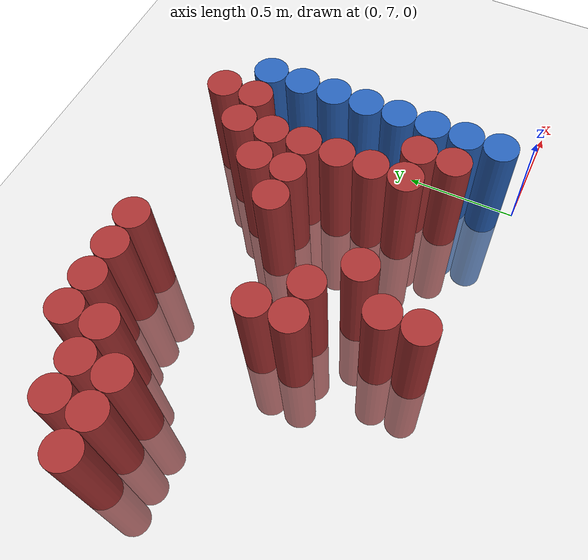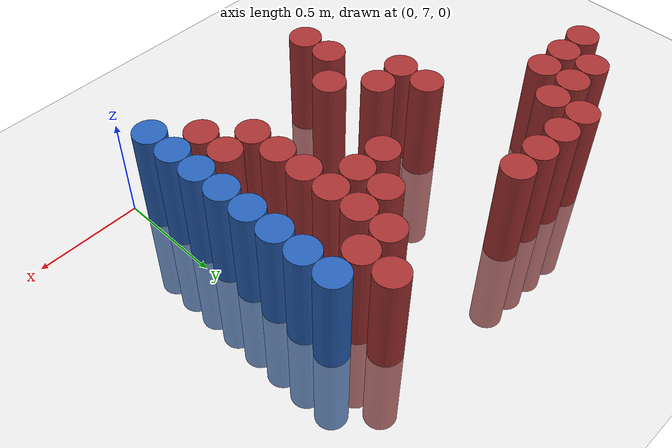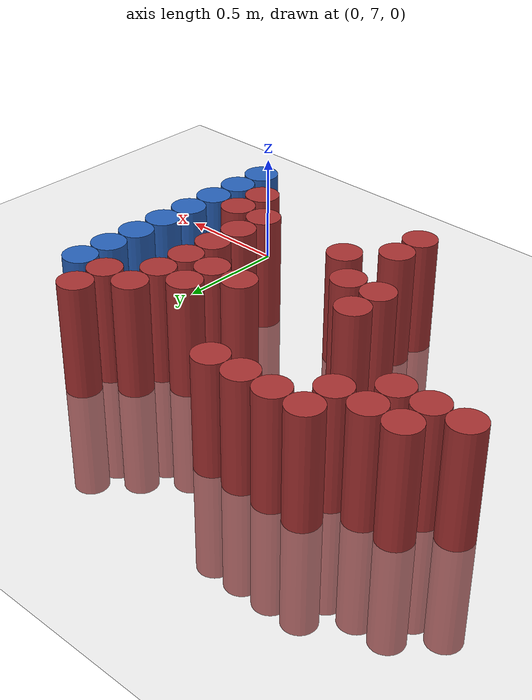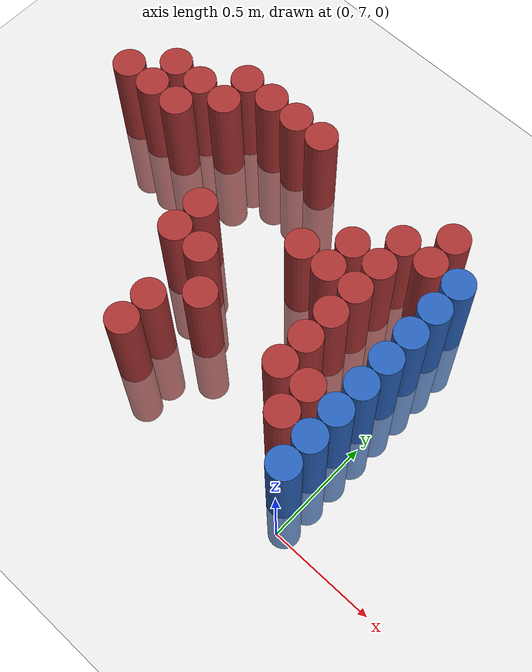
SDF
<sdf version="1.6">
 <world name="default">
  <model name="ground_plane">
   <static>1</static>
   <link name="link">
    <collision name="collision">
     <geometry><plane><normal>0 0 1</normal><size>100 100</size></plane></geometry>
     <surface><friction><ode><mu>100</mu><mu2>50</mu2></ode></friction></surface>
    </collision>
    <visual name="visual">
     <cast_shadows>0</cast_shadows>
     <geometry><plane><normal>0 0 1</normal><size>100 100</size></plane></geometry>
     <material>
      <script><uri>file://media/materials/scripts/gazebo.material</uri><name>Gazebo/Grey</name></script>
     </material>
    </visual>
   </link>
  </model>
  <model name="unit_cylinder_195">
   <static>1</static>
   <pose>-1.875000 8.025000 0.000000 0.000000 0.000000 0.000000</pose>
   <link name="link">
    <inertial>
     <mass>1</mass>
     <inertia><ixx>0.145833</ixx><ixy>0</ixy><ixz>0</ixz><iyy>0.145833</iyy><iyz>0</iyz><izz>0.125</izz></inertia>
    </inertial>
    <collision name="collision">
     <geometry><cylinder><radius>0.075000</radius><length>1</length></cylinder></geometry>
    </collision>
    <visual name="visual">
     <geometry><cylinder><radius>0.075000</radius><length>1</length></cylinder></geometry>
     <material>
      <ambient>0.648000 0.192000 0.192000 1</ambient>
      <diffuse>0.648000 0.192000 0.192000 1</diffuse>
     </material>
     <material>
      <script><name>Gazebo/Grey</name><uri>file://media/materials/scripts/gazebo.material</uri></script>
     </material>
    </visual>
    <sensor name="sensor_contact" type="contact"><contact><collision>collision</collision></contact></sensor>
   </link>
   <plugin filename="gz-sim-touchplugin-system" name="gz::sim::systems::TouchPlugin">
    <target>robot</target>
    <namespace>robot</namespace>
    <time>0.001</time>
    <enabled>true</enabled>
   </plugin>
  </model>
  <model name="unit_cylinder_202">
   <static>1</static>
   <pose>-1.725000 8.025000 0.000000 0.000000 0.000000 0.000000</pose>
   <link name="link">
    <inertial>
     <mass>1</mass>
     <inertia><ixx>0.145833</ixx><ixy>0</ixy><ixz>0</ixz><iyy>0.145833</iyy><iyz>0</iyz><izz>0.125</izz></inertia>
    </inertial>
    <collision name="collision">
     <geometry><cylinder><radius>0.075000</radius><length>1</length></cylinder></geometry>
    </collision>
    <visual name="visual">
     <geometry><cylinder><radius>0.075000</radius><length>1</length></cylinder></geometry>
     <material>
      <ambient>0.648000 0.192000 0.192000 1</ambient>
      <diffuse>0.648000 0.192000 0.192000 1</diffuse>
     </material>
     <material>
      <script><name>Gazebo/Grey</name><uri>file://media/materials/scripts/gazebo.material</uri></script>
     </material>
    </visual>
    <sensor name="sensor_contact" type="contact"><contact><collision>collision</collision></contact></sensor>
   </link>
   <plugin filename="gz-sim-touchplugin-system" name="gz::sim::systems::TouchPlugin">
    <target>robot</target>
    <namespace>robot</namespace>
    <time>0.001</time>
    <enabled>true</enabled>
   </plugin>
  </model>
  <model name="unit_cylinder_203">
   <static>1</static>
   <pose>-1.725000 8.175000 0.000000 0.000000 0.000000 0.000000</pose>
   <link name="link">
    <inertial>
     <mass>1</mass>
     <inertia><ixx>0.145833</ixx><ixy>0</ixy><ixz>0</ixz><iyy>0.145833</iyy><iyz>0</iyz><izz>0.125</izz></inertia>
    </inertial>
    <collision name="collision">
     <geometry><cylinder><radius>0.075000</radius><length>1</length></cylinder></geometry>
    </collision>
    <visual name="visual">
     <geometry><cylinder><radius>0.075000</radius><length>1</length></cylinder></geometry>
     <material>
      <ambient>0.648000 0.192000 0.192000 1</ambient>
      <diffuse>0.648000 0.192000 0.192000 1</diffuse>
     </material>
     <material>
      <script><name>Gazebo/Grey</name><uri>file://media/materials/scripts/gazebo.material</uri></script>
     </material>
    </visual>
    <sensor name="sensor_contact" type="contact"><contact><collision>collision</collision></contact></sensor>
   </link>
   <plugin filename="gz-sim-touchplugin-system" name="gz::sim::systems::TouchPlugin">
    <target>robot</target>
    <namespace>robot</namespace>
    <time>0.001</time>
    <enabled>true</enabled>
   </plugin>
  </model>
  <model name="unit_cylinder_209">
   <static>1</static>
   <pose>-1.575000 8.025000 0.000000 0.000000 0.000000 0.000000</pose>
   <link name="link">
    <inertial>
     <mass>1</mass>
     <inertia><ixx>0.145833</ixx><ixy>0</ixy><ixz>0</ixz><iyy>0.145833</iyy><iyz>0</iyz><izz>0.125</izz></inertia>
    </inertial>
    <collision name="collision">
     <geometry><cylinder><radius>0.075000</radius><length>1</length></cylinder></geometry>
    </collision>
    <visual name="visual">
     <geometry><cylinder><radius>0.075000</radius><length>1</length></cylinder></geometry>
     <material>
      <ambient>0.648000 0.192000 0.192000 1</ambient>
      <diffuse>0.648000 0.192000 0.192000 1</diffuse>
     </material>
     <material>
      <script><name>Gazebo/Grey</name><uri>file://media/materials/scripts/gazebo.material</uri></script>
     </material>
    </visual>
    <sensor name="sensor_contact" type="contact"><contact><collision>collision</collision></contact></sensor>
   </link>
   <plugin filename="gz-sim-touchplugin-system" name="gz::sim::systems::TouchPlugin">
    <target>robot</target>
    <namespace>robot</namespace>
    <time>0.001</time>
    <enabled>true</enabled>
   </plugin>
  </model>
  <model name="unit_cylinder_210">
   <static>1</static>
   <pose>-1.575000 8.175000 0.000000 0.000000 0.000000 0.000000</pose>
   <link name="link">
    <inertial>
     <mass>1</mass>
     <inertia><ixx>0.145833</ixx><ixy>0</ixy><ixz>0</ixz><iyy>0.145833</iyy><iyz>0</iyz><izz>0.125</izz></inertia>
    </inertial>
    <collision name="collision">
     <geometry><cylinder><radius>0.075000</radius><length>1</length></cylinder></geometry>
    </collision>
    <visual name="visual">
     <geometry><cylinder><radius>0.075000</radius><length>1</length></cylinder></geometry>
     <material>
      <ambient>0.648000 0.192000 0.192000 1</ambient>
      <diffuse>0.648000 0.192000 0.192000 1</diffuse>
     </material>
     <material>
      <script><name>Gazebo/Grey</name><uri>file://media/materials/scripts/gazebo.material</uri></script>
     </material>
    </visual>
    <sensor name="sensor_contact" type="contact"><contact><collision>collision</collision></contact></sensor>
   </link>
   <plugin filename="gz-sim-touchplugin-system" name="gz::sim::systems::TouchPlugin">
    <target>robot</target>
    <namespace>robot</namespace>
    <time>0.001</time>
    <enabled>true</enabled>
   </plugin>
  </model>
  <model name="unit_cylinder_219">
   <static>1</static>
   <pose>-1.425000 8.175000 0.000000 0.000000 0.000000 0.000000</pose>
   <link name="link">
    <inertial>
     <mass>1</mass>
     <inertia><ixx>0.145833</ixx><ixy>0</ixy><ixz>0</ixz><iyy>0.145833</iyy><iyz>0</iyz><izz>0.125</izz></inertia>
    </inertial>
    <collision name="collision">
     <geometry><cylinder><radius>0.075000</radius><length>1</length></cylinder></geometry>
    </collision>
    <visual name="visual">
     <geometry><cylinder><radius>0.075000</radius><length>1</length></cylinder></geometry>
     <material>
      <ambient>0.648000 0.192000 0.192000 1</ambient>
      <diffuse>0.648000 0.192000 0.192000 1</diffuse>
     </material>
     <material>
      <script><name>Gazebo/Grey</name><uri>file://media/materials/scripts/gazebo.material</uri></script>
     </material>
    </visual>
    <sensor name="sensor_contact" type="contact"><contact><collision>collision</collision></contact></sensor>
   </link>
   <plugin filename="gz-sim-touchplugin-system" name="gz::sim::systems::TouchPlugin">
    <target>robot</target>
    <namespace>robot</namespace>
    <time>0.001</time>
    <enabled>true</enabled>
   </plugin>
  </model>
  <model name="unit_cylinder_220">
   <static>1</static>
   <pose>-1.425000 8.325000 0.000000 0.000000 0.000000 0.000000</pose>
   <link name="link">
    <inertial>
     <mass>1</mass>
     <inertia><ixx>0.145833</ixx><ixy>0</ixy><ixz>0</ixz><iyy>0.145833</iyy><iyz>0</iyz><izz>0.125</izz></inertia>
    </inertial>
    <collision name="collision">
     <geometry><cylinder><radius>0.075000</radius><length>1</length></cylinder></geometry>
    </collision>
    <visual name="visual">
     <geometry><cylinder><radius>0.075000</radius><length>1</length></cylinder></geometry>
     <material>
      <ambient>0.648000 0.192000 0.192000 1</ambient>
      <diffuse>0.648000 0.192000 0.192000 1</diffuse>
     </material>
     <material>
      <script><name>Gazebo/Grey</name><uri>file://media/materials/scripts/gazebo.material</uri></script>
     </material>
    </visual>
    <sensor name="sensor_contact" type="contact"><contact><collision>collision</collision></contact></sensor>
   </link>
   <plugin filename="gz-sim-touchplugin-system" name="gz::sim::systems::TouchPlugin">
    <target>robot</target>
    <namespace>robot</namespace>
    <time>0.001</time>
    <enabled>true</enabled>
   </plugin>
  </model>
  <model name="unit_cylinder_232">
   <static>1</static>
   <pose>-1.275000 8.325000 0.000000 0.000000 0.000000 0.000000</pose>
   <link name="link">
    <inertial>
     <mass>1</mass>
     <inertia><ixx>0.145833</ixx><ixy>0</ixy><ixz>0</ixz><iyy>0.145833</iyy><iyz>0</iyz><izz>0.125</izz></inertia>
    </inertial>
    <collision name="collision">
     <geometry><cylinder><radius>0.075000</radius><length>1</length></cylinder></geometry>
    </collision>
    <visual name="visual">
     <geometry><cylinder><radius>0.075000</radius><length>1</length></cylinder></geometry>
     <material>
      <ambient>0.648000 0.192000 0.192000 1</ambient>
      <diffuse>0.648000 0.192000 0.192000 1</diffuse>
     </material>
     <material>
      <script><name>Gazebo/Grey</name><uri>file://media/materials/scripts/gazebo.material</uri></script>
     </material>
    </visual>
    <sensor name="sensor_contact" type="contact"><contact><collision>collision</collision></contact></sensor>
   </link>
   <plugin filename="gz-sim-touchplugin-system" name="gz::sim::systems::TouchPlugin">
    <target>robot</target>
    <namespace>robot</namespace>
    <time>0.001</time>
    <enabled>true</enabled>
   </plugin>
  </model>
  <model name="unit_cylinder_245">
   <static>1</static>
   <pose>-1.125000 7.575000 0.000000 0.000000 0.000000 0.000000</pose>
   <link name="link">
    <inertial>
     <mass>1</mass>
     <inertia><ixx>0.145833</ixx><ixy>0</ixy><ixz>0</ixz><iyy>0.145833</iyy><iyz>0</iyz><izz>0.125</izz></inertia>
    </inertial>
    <collision name="collision">
     <geometry><cylinder><radius>0.075000</radius><length>1</length></cylinder></geometry>
    </collision>
    <visual name="visual">
     <geometry><cylinder><radius>0.075000</radius><length>1</length></cylinder></geometry>
     <material>
      <ambient>0.648000 0.192000 0.192000 1</ambient>
      <diffuse>0.648000 0.192000 0.192000 1</diffuse>
     </material>
     <material>
      <script><name>Gazebo/Grey</name><uri>file://media/materials/scripts/gazebo.material</uri></script>
     </material>
    </visual>
    <sensor name="sensor_contact" type="contact"><contact><collision>collision</collision></contact></sensor>
   </link>
   <plugin filename="gz-sim-touchplugin-system" name="gz::sim::systems::TouchPlugin">
    <target>robot</target>
    <namespace>robot</namespace>
    <time>0.001</time>
    <enabled>true</enabled>
   </plugin>
  </model>
  <model name="unit_cylinder_246">
   <static>1</static>
   <pose>-1.125000 7.725000 0.000000 0.000000 0.000000 0.000000</pose>
   <link name="link">
    <inertial>
     <mass>1</mass>
     <inertia><ixx>0.145833</ixx><ixy>0</ixy><ixz>0</ixz><iyy>0.145833</iyy><iyz>0</iyz><izz>0.125</izz></inertia>
    </inertial>
    <collision name="collision">
     <geometry><cylinder><radius>0.075000</radius><length>1</length></cylinder></geometry>
    </collision>
    <visual name="visual">
     <geometry><cylinder><radius>0.075000</radius><length>1</length></cylinder></geometry>
     <material>
      <ambient>0.648000 0.192000 0.192000 1</ambient>
      <diffuse>0.648000 0.192000 0.192000 1</diffuse>
     </material>
     <material>
      <script><name>Gazebo/Grey</name><uri>file://media/materials/scripts/gazebo.material</uri></script>
     </material>
    </visual>
    <sensor name="sensor_contact" type="contact"><contact><collision>collision</collision></contact></sensor>
   </link>
   <plugin filename="gz-sim-touchplugin-system" name="gz::sim::systems::TouchPlugin">
    <target>robot</target>
    <namespace>robot</namespace>
    <time>0.001</time>
    <enabled>true</enabled>
   </plugin>
  </model>
  <model name="unit_cylinder_247">
   <static>1</static>
   <pose>-1.125000 8.325000 0.000000 0.000000 0.000000 0.000000</pose>
   <link name="link">
    <inertial>
     <mass>1</mass>
     <inertia><ixx>0.145833</ixx><ixy>0</ixy><ixz>0</ixz><iyy>0.145833</iyy><iyz>0</iyz><izz>0.125</izz></inertia>
    </inertial>
    <collision name="collision">
     <geometry><cylinder><radius>0.075000</radius><length>1</length></cylinder></geometry>
    </collision>
    <visual name="visual">
     <geometry><cylinder><radius>0.075000</radius><length>1</length></cylinder></geometry>
     <material>
      <ambient>0.648000 0.192000 0.192000 1</ambient>
      <diffuse>0.648000 0.192000 0.192000 1</diffuse>
     </material>
     <material>
      <script><name>Gazebo/Grey</name><uri>file://media/materials/scripts/gazebo.material</uri></script>
     </material>
    </visual>
    <sensor name="sensor_contact" type="contact"><contact><collision>collision</collision></contact></sensor>
   </link>
   <plugin filename="gz-sim-touchplugin-system" name="gz::sim::systems::TouchPlugin">
    <target>robot</target>
    <namespace>robot</namespace>
    <time>0.001</time>
    <enabled>true</enabled>
   </plugin>
  </model>
  <model name="unit_cylinder_256">
   <static>1</static>
   <pose>-0.975000 7.125000 0.000000 0.000000 0.000000 0.000000</pose>
   <link name="link">
    <inertial>
     <mass>1</mass>
     <inertia><ixx>0.145833</ixx><ixy>0</ixy><ixz>0</ixz><iyy>0.145833</iyy><iyz>0</iyz><izz>0.125</izz></inertia>
    </inertial>
    <collision name="collision">
     <geometry><cylinder><radius>0.075000</radius><length>1</length></cylinder></geometry>
    </collision>
    <visual name="visual">
     <geometry><cylinder><radius>0.075000</radius><length>1</length></cylinder></geometry>
     <material>
      <ambient>0.648000 0.192000 0.192000 1</ambient>
      <diffuse>0.648000 0.192000 0.192000 1</diffuse>
     </material>
     <material>
      <script><name>Gazebo/Grey</name><uri>file://media/materials/scripts/gazebo.material</uri></script>
     </material>
    </visual>
    <sensor name="sensor_contact" type="contact"><contact><collision>collision</collision></contact></sensor>
   </link>
   <plugin filename="gz-sim-touchplugin-system" name="gz::sim::systems::TouchPlugin">
    <target>robot</target>
    <namespace>robot</namespace>
    <time>0.001</time>
    <enabled>true</enabled>
   </plugin>
  </model>
  <model name="unit_cylinder_257">
   <static>1</static>
   <pose>-0.975000 7.275000 0.000000 0.000000 0.000000 0.000000</pose>
   <link name="link">
    <inertial>
     <mass>1</mass>
     <inertia><ixx>0.145833</ixx><ixy>0</ixy><ixz>0</ixz><iyy>0.145833</iyy><iyz>0</iyz><izz>0.125</izz></inertia>
    </inertial>
    <collision name="collision">
     <geometry><cylinder><radius>0.075000</radius><length>1</length></cylinder></geometry>
    </collision>
    <visual name="visual">
     <geometry><cylinder><radius>0.075000</radius><length>1</length></cylinder></geometry>
     <material>
      <ambient>0.648000 0.192000 0.192000 1</ambient>
      <diffuse>0.648000 0.192000 0.192000 1</diffuse>
     </material>
     <material>
      <script><name>Gazebo/Grey</name><uri>file://media/materials/scripts/gazebo.material</uri></script>
     </material>
    </visual>
    <sensor name="sensor_contact" type="contact"><contact><collision>collision</collision></contact></sensor>
   </link>
   <plugin filename="gz-sim-touchplugin-system" name="gz::sim::systems::TouchPlugin">
    <target>robot</target>
    <namespace>robot</namespace>
    <time>0.001</time>
    <enabled>true</enabled>
   </plugin>
  </model>
  <model name="unit_cylinder_258">
   <static>1</static>
   <pose>-0.975000 7.575000 0.000000 0.000000 0.000000 0.000000</pose>
   <link name="link">
    <inertial>
     <mass>1</mass>
     <inertia><ixx>0.145833</ixx><ixy>0</ixy><ixz>0</ixz><iyy>0.145833</iyy><iyz>0</iyz><izz>0.125</izz></inertia>
    </inertial>
    <collision name="collision">
     <geometry><cylinder><radius>0.075000</radius><length>1</length></cylinder></geometry>
    </collision>
    <visual name="visual">
     <geometry><cylinder><radius>0.075000</radius><length>1</length></cylinder></geometry>
     <material>
      <ambient>0.648000 0.192000 0.192000 1</ambient>
      <diffuse>0.648000 0.192000 0.192000 1</diffuse>
     </material>
     <material>
      <script><name>Gazebo/Grey</name><uri>file://media/materials/scripts/gazebo.material</uri></script>
     </material>
    </visual>
    <sensor name="sensor_contact" type="contact"><contact><collision>collision</collision></contact></sensor>
   </link>
   <plugin filename="gz-sim-touchplugin-system" name="gz::sim::systems::TouchPlugin">
    <target>robot</target>
    <namespace>robot</namespace>
    <time>0.001</time>
    <enabled>true</enabled>
   </plugin>
  </model>
  <model name="unit_cylinder_259">
   <static>1</static>
   <pose>-0.975000 8.325000 0.000000 0.000000 0.000000 0.000000</pose>
   <link name="link">
    <inertial>
     <mass>1</mass>
     <inertia><ixx>0.145833</ixx><ixy>0</ixy><ixz>0</ixz><iyy>0.145833</iyy><iyz>0</iyz><izz>0.125</izz></inertia>
    </inertial>
    <collision name="collision">
     <geometry><cylinder><radius>0.075000</radius><length>1</length></cylinder></geometry>
    </collision>
    <visual name="visual">
     <geometry><cylinder><radius>0.075000</radius><length>1</length></cylinder></geometry>
     <material>
      <ambient>0.648000 0.192000 0.192000 1</ambient>
      <diffuse>0.648000 0.192000 0.192000 1</diffuse>
     </material>
     <material>
      <script><name>Gazebo/Grey</name><uri>file://media/materials/scripts/gazebo.material</uri></script>
     </material>
    </visual>
    <sensor name="sensor_contact" type="contact"><contact><collision>collision</collision></contact></sensor>
   </link>
   <plugin filename="gz-sim-touchplugin-system" name="gz::sim::systems::TouchPlugin">
    <target>robot</target>
    <namespace>robot</namespace>
    <time>0.001</time>
    <enabled>true</enabled>
   </plugin>
  </model>
  <model name="unit_cylinder_266">
   <static>1</static>
   <pose>-0.825000 7.425000 0.000000 0.000000 0.000000 0.000000</pose>
   <link name="link">
    <inertial>
     <mass>1</mass>
     <inertia><ixx>0.145833</ixx><ixy>0</ixy><ixz>0</ixz><iyy>0.145833</iyy><iyz>0</iyz><izz>0.125</izz></inertia>
    </inertial>
    <collision name="collision">
     <geometry><cylinder><radius>0.075000</radius><length>1</length></cylinder></geometry>
    </collision>
    <visual name="visual">
     <geometry><cylinder><radius>0.075000</radius><length>1</length></cylinder></geometry>
     <material>
      <ambient>0.648000 0.192000 0.192000 1</ambient>
      <diffuse>0.648000 0.192000 0.192000 1</diffuse>
     </material>
     <material>
      <script><name>Gazebo/Grey</name><uri>file://media/materials/scripts/gazebo.material</uri></script>
     </material>
    </visual>
    <sensor name="sensor_contact" type="contact"><contact><collision>collision</collision></contact></sensor>
   </link>
   <plugin filename="gz-sim-touchplugin-system" name="gz::sim::systems::TouchPlugin">
    <target>robot</target>
    <namespace>robot</namespace>
    <time>0.001</time>
    <enabled>true</enabled>
   </plugin>
  </model>
  <model name="unit_cylinder_272">
   <static>1</static>
   <pose>-0.675000 7.875000 0.000000 0.000000 0.000000 0.000000</pose>
   <link name="link">
    <inertial>
     <mass>1</mass>
     <inertia><ixx>0.145833</ixx><ixy>0</ixy><ixz>0</ixz><iyy>0.145833</iyy><iyz>0</iyz><izz>0.125</izz></inertia>
    </inertial>
    <collision name="collision">
     <geometry><cylinder><radius>0.075000</radius><length>1</length></cylinder></geometry>
    </collision>
    <visual name="visual">
     <geometry><cylinder><radius>0.075000</radius><length>1</length></cylinder></geometry>
     <material>
      <ambient>0.648000 0.192000 0.192000 1</ambient>
      <diffuse>0.648000 0.192000 0.192000 1</diffuse>
     </material>
     <material>
      <script><name>Gazebo/Grey</name><uri>file://media/materials/scripts/gazebo.material</uri></script>
     </material>
    </visual>
    <sensor name="sensor_contact" type="contact"><contact><collision>collision</collision></contact></sensor>
   </link>
   <plugin filename="gz-sim-touchplugin-system" name="gz::sim::systems::TouchPlugin">
    <target>robot</target>
    <namespace>robot</namespace>
    <time>0.001</time>
    <enabled>true</enabled>
   </plugin>
  </model>
  <model name="unit_cylinder_279">
   <static>1</static>
   <pose>-0.525000 7.875000 0.000000 0.000000 0.000000 0.000000</pose>
   <link name="link">
    <inertial>
     <mass>1</mass>
     <inertia><ixx>0.145833</ixx><ixy>0</ixy><ixz>0</ixz><iyy>0.145833</iyy><iyz>0</iyz><izz>0.125</izz></inertia>
    </inertial>
    <collision name="collision">
     <geometry><cylinder><radius>0.075000</radius><length>1</length></cylinder></geometry>
    </collision>
    <visual name="visual">
     <geometry><cylinder><radius>0.075000</radius><length>1</length></cylinder></geometry>
     <material>
      <ambient>0.648000 0.192000 0.192000 1</ambient>
      <diffuse>0.648000 0.192000 0.192000 1</diffuse>
     </material>
     <material>
      <script><name>Gazebo/Grey</name><uri>file://media/materials/scripts/gazebo.material</uri></script>
     </material>
    </visual>
    <sensor name="sensor_contact" type="contact"><contact><collision>collision</collision></contact></sensor>
   </link>
   <plugin filename="gz-sim-touchplugin-system" name="gz::sim::systems::TouchPlugin">
    <target>robot</target>
    <namespace>robot</namespace>
    <time>0.001</time>
    <enabled>true</enabled>
   </plugin>
  </model>
  <model name="unit_cylinder_280">
   <static>1</static>
   <pose>-0.525000 8.025000 0.000000 0.000000 0.000000 0.000000</pose>
   <link name="link">
    <inertial>
     <mass>1</mass>
     <inertia><ixx>0.145833</ixx><ixy>0</ixy><ixz>0</ixz><iyy>0.145833</iyy><iyz>0</iyz><izz>0.125</izz></inertia>
    </inertial>
    <collision name="collision">
     <geometry><cylinder><radius>0.075000</radius><length>1</length></cylinder></geometry>
    </collision>
    <visual name="visual">
     <geometry><cylinder><radius>0.075000</radius><length>1</length></cylinder></geometry>
     <material>
      <ambient>0.648000 0.192000 0.192000 1</ambient>
      <diffuse>0.648000 0.192000 0.192000 1</diffuse>
     </material>
     <material>
      <script><name>Gazebo/Grey</name><uri>file://media/materials/scripts/gazebo.material</uri></script>
     </material>
    </visual>
    <sensor name="sensor_contact" type="contact"><contact><collision>collision</collision></contact></sensor>
   </link>
   <plugin filename="gz-sim-touchplugin-system" name="gz::sim::systems::TouchPlugin">
    <target>robot</target>
    <namespace>robot</namespace>
    <time>0.001</time>
    <enabled>true</enabled>
   </plugin>
  </model>
  <model name="unit_cylinder_285">
   <static>1</static>
   <pose>-0.375000 7.425000 0.000000 0.000000 0.000000 0.000000</pose>
   <link name="link">
    <inertial>
     <mass>1</mass>
     <inertia><ixx>0.145833</ixx><ixy>0</ixy><ixz>0</ixz><iyy>0.145833</iyy><iyz>0</iyz><izz>0.125</izz></inertia>
    </inertial>
    <collision name="collision">
     <geometry><cylinder><radius>0.075000</radius><length>1</length></cylinder></geometry>
    </collision>
    <visual name="visual">
     <geometry><cylinder><radius>0.075000</radius><length>1</length></cylinder></geometry>
     <material>
      <ambient>0.648000 0.192000 0.192000 1</ambient>
      <diffuse>0.648000 0.192000 0.192000 1</diffuse>
     </material>
     <material>
      <script><name>Gazebo/Grey</name><uri>file://media/materials/scripts/gazebo.material</uri></script>
     </material>
    </visual>
    <sensor name="sensor_contact" type="contact"><contact><collision>collision</collision></contact></sensor>
   </link>
   <plugin filename="gz-sim-touchplugin-system" name="gz::sim::systems::TouchPlugin">
    <target>robot</target>
    <namespace>robot</namespace>
    <time>0.001</time>
    <enabled>true</enabled>
   </plugin>
  </model>
  <model name="unit_cylinder_286">
   <static>1</static>
   <pose>-0.375000 7.575000 0.000000 0.000000 0.000000 0.000000</pose>
   <link name="link">
    <inertial>
     <mass>1</mass>
     <inertia><ixx>0.145833</ixx><ixy>0</ixy><ixz>0</ixz><iyy>0.145833</iyy><iyz>0</iyz><izz>0.125</izz></inertia>
    </inertial>
    <collision name="collision">
     <geometry><cylinder><radius>0.075000</radius><length>1</length></cylinder></geometry>
    </collision>
    <visual name="visual">
     <geometry><cylinder><radius>0.075000</radius><length>1</length></cylinder></geometry>
     <material>
      <ambient>0.648000 0.192000 0.192000 1</ambient>
      <diffuse>0.648000 0.192000 0.192000 1</diffuse>
     </material>
     <material>
      <script><name>Gazebo/Grey</name><uri>file://media/materials/scripts/gazebo.material</uri></script>
     </material>
    </visual>
    <sensor name="sensor_contact" type="contact"><contact><collision>collision</collision></contact></sensor>
   </link>
   <plugin filename="gz-sim-touchplugin-system" name="gz::sim::systems::TouchPlugin">
    <target>robot</target>
    <namespace>robot</namespace>
    <time>0.001</time>
    <enabled>true</enabled>
   </plugin>
  </model>
  <model name="unit_cylinder_287">
   <static>1</static>
   <pose>-0.375000 7.725000 0.000000 0.000000 0.000000 0.000000</pose>
   <link name="link">
    <inertial>
     <mass>1</mass>
     <inertia><ixx>0.145833</ixx><ixy>0</ixy><ixz>0</ixz><iyy>0.145833</iyy><iyz>0</iyz><izz>0.125</izz></inertia>
    </inertial>
    <collision name="collision">
     <geometry><cylinder><radius>0.075000</radius><length>1</length></cylinder></geometry>
    </collision>
    <visual name="visual">
     <geometry><cylinder><radius>0.075000</radius><length>1</length></cylinder></geometry>
     <material>
      <ambient>0.648000 0.192000 0.192000 1</ambient>
      <diffuse>0.648000 0.192000 0.192000 1</diffuse>
     </material>
     <material>
      <script><name>Gazebo/Grey</name><uri>file://media/materials/scripts/gazebo.material</uri></script>
     </material>
    </visual>
    <sensor name="sensor_contact" type="contact"><contact><collision>collision</collision></contact></sensor>
   </link>
   <plugin filename="gz-sim-touchplugin-system" name="gz::sim::systems::TouchPlugin">
    <target>robot</target>
    <namespace>robot</namespace>
    <time>0.001</time>
    <enabled>true</enabled>
   </plugin>
  </model>
  <model name="unit_cylinder_288">
   <static>1</static>
   <pose>-0.375000 7.875000 0.000000 0.000000 0.000000 0.000000</pose>
   <link name="link">
    <inertial>
     <mass>1</mass>
     <inertia><ixx>0.145833</ixx><ixy>0</ixy><ixz>0</ixz><iyy>0.145833</iyy><iyz>0</iyz><izz>0.125</izz></inertia>
    </inertial>
    <collision name="collision">
     <geometry><cylinder><radius>0.075000</radius><length>1</length></cylinder></geometry>
    </collision>
    <visual name="visual">
     <geometry><cylinder><radius>0.075000</radius><length>1</length></cylinder></geometry>
     <material>
      <ambient>0.648000 0.192000 0.192000 1</ambient>
      <diffuse>0.648000 0.192000 0.192000 1</diffuse>
     </material>
     <material>
      <script><name>Gazebo/Grey</name><uri>file://media/materials/scripts/gazebo.material</uri></script>
     </material>
    </visual>
    <sensor name="sensor_contact" type="contact"><contact><collision>collision</collision></contact></sensor>
   </link>
   <plugin filename="gz-sim-touchplugin-system" name="gz::sim::systems::TouchPlugin">
    <target>robot</target>
    <namespace>robot</namespace>
    <time>0.001</time>
    <enabled>true</enabled>
   </plugin>
  </model>
  <model name="unit_cylinder_289">
   <static>1</static>
   <pose>-0.375000 8.025000 0.000000 0.000000 0.000000 0.000000</pose>
   <link name="link">
    <inertial>
     <mass>1</mass>
     <inertia><ixx>0.145833</ixx><ixy>0</ixy><ixz>0</ixz><iyy>0.145833</iyy><iyz>0</iyz><izz>0.125</izz></inertia>
    </inertial>
    <collision name="collision">
     <geometry><cylinder><radius>0.075000</radius><length>1</length></cylinder></geometry>
    </collision>
    <visual name="visual">
     <geometry><cylinder><radius>0.075000</radius><length>1</length></cylinder></geometry>
     <material>
      <ambient>0.648000 0.192000 0.192000 1</ambient>
      <diffuse>0.648000 0.192000 0.192000 1</diffuse>
     </material>
     <material>
      <script><name>Gazebo/Grey</name><uri>file://media/materials/scripts/gazebo.material</uri></script>
     </material>
    </visual>
    <sensor name="sensor_contact" type="contact"><contact><collision>collision</collision></contact></sensor>
   </link>
   <plugin filename="gz-sim-touchplugin-system" name="gz::sim::systems::TouchPlugin">
    <target>robot</target>
    <namespace>robot</namespace>
    <time>0.001</time>
    <enabled>true</enabled>
   </plugin>
  </model>
  <model name="unit_cylinder_290">
   <static>1</static>
   <pose>-0.375000 8.175000 0.000000 0.000000 0.000000 0.000000</pose>
   <link name="link">
    <inertial>
     <mass>1</mass>
     <inertia><ixx>0.145833</ixx><ixy>0</ixy><ixz>0</ixz><iyy>0.145833</iyy><iyz>0</iyz><izz>0.125</izz></inertia>
    </inertial>
    <collision name="collision">
     <geometry><cylinder><radius>0.075000</radius><length>1</length></cylinder></geometry>
    </collision>
    <visual name="visual">
     <geometry><cylinder><radius>0.075000</radius><length>1</length></cylinder></geometry>
     <material>
      <ambient>0.648000 0.192000 0.192000 1</ambient>
      <diffuse>0.648000 0.192000 0.192000 1</diffuse>
     </material>
     <material>
      <script><name>Gazebo/Grey</name><uri>file://media/materials/scripts/gazebo.material</uri></script>
     </material>
    </visual>
    <sensor name="sensor_contact" type="contact"><contact><collision>collision</collision></contact></sensor>
   </link>
   <plugin filename="gz-sim-touchplugin-system" name="gz::sim::systems::TouchPlugin">
    <target>robot</target>
    <namespace>robot</namespace>
    <time>0.001</time>
    <enabled>true</enabled>
   </plugin>
  </model>
  <model name="unit_cylinder_298">
   <static>1</static>
   <pose>-0.225000 7.275000 0.000000 0.000000 0.000000 0.000000</pose>
   <link name="link">
    <inertial>
     <mass>1</mass>
     <inertia><ixx>0.145833</ixx><ixy>0</ixy><ixz>0</ixz><iyy>0.145833</iyy><iyz>0</iyz><izz>0.125</izz></inertia>
    </inertial>
    <collision name="collision">
     <geometry><cylinder><radius>0.075000</radius><length>1</length></cylinder></geometry>
    </collision>
    <visual name="visual">
     <geometry><cylinder><radius>0.075000</radius><length>1</length></cylinder></geometry>
     <material>
      <ambient>0.648000 0.192000 0.192000 1</ambient>
      <diffuse>0.648000 0.192000 0.192000 1</diffuse>
     </material>
     <material>
      <script><name>Gazebo/Grey</name><uri>file://media/materials/scripts/gazebo.material</uri></script>
     </material>
    </visual>
    <sensor name="sensor_contact" type="contact"><contact><collision>collision</collision></contact></sensor>
   </link>
   <plugin filename="gz-sim-touchplugin-system" name="gz::sim::systems::TouchPlugin">
    <target>robot</target>
    <namespace>robot</namespace>
    <time>0.001</time>
    <enabled>true</enabled>
   </plugin>
  </model>
  <model name="unit_cylinder_299">
   <static>1</static>
   <pose>-0.225000 7.425000 0.000000 0.000000 0.000000 0.000000</pose>
   <link name="link">
    <inertial>
     <mass>1</mass>
     <inertia><ixx>0.145833</ixx><ixy>0</ixy><ixz>0</ixz><iyy>0.145833</iyy><iyz>0</iyz><izz>0.125</izz></inertia>
    </inertial>
    <collision name="collision">
     <geometry><cylinder><radius>0.075000</radius><length>1</length></cylinder></geometry>
    </collision>
    <visual name="visual">
     <geometry><cylinder><radius>0.075000</radius><length>1</length></cylinder></geometry>
     <material>
      <ambient>0.648000 0.192000 0.192000 1</ambient>
      <diffuse>0.648000 0.192000 0.192000 1</diffuse>
     </material>
     <material>
      <script><name>Gazebo/Grey</name><uri>file://media/materials/scripts/gazebo.material</uri></script>
     </material>
    </visual>
    <sensor name="sensor_contact" type="contact"><contact><collision>collision</collision></contact></sensor>
   </link>
   <plugin filename="gz-sim-touchplugin-system" name="gz::sim::systems::TouchPlugin">
    <target>robot</target>
    <namespace>robot</namespace>
    <time>0.001</time>
    <enabled>true</enabled>
   </plugin>
  </model>
  <model name="unit_cylinder_300">
   <static>1</static>
   <pose>-0.225000 8.175000 0.000000 0.000000 0.000000 0.000000</pose>
   <link name="link">
    <inertial>
     <mass>1</mass>
     <inertia><ixx>0.145833</ixx><ixy>0</ixy><ixz>0</ixz><iyy>0.145833</iyy><iyz>0</iyz><izz>0.125</izz></inertia>
    </inertial>
    <collision name="collision">
     <geometry><cylinder><radius>0.075000</radius><length>1</length></cylinder></geometry>
    </collision>
    <visual name="visual">
     <geometry><cylinder><radius>0.075000</radius><length>1</length></cylinder></geometry>
     <material>
      <ambient>0.648000 0.192000 0.192000 1</ambient>
      <diffuse>0.648000 0.192000 0.192000 1</diffuse>
     </material>
     <material>
      <script><name>Gazebo/Grey</name><uri>file://media/materials/scripts/gazebo.material</uri></script>
     </material>
    </visual>
    <sensor name="sensor_contact" type="contact"><contact><collision>collision</collision></contact></sensor>
   </link>
   <plugin filename="gz-sim-touchplugin-system" name="gz::sim::systems::TouchPlugin">
    <target>robot</target>
    <namespace>robot</namespace>
    <time>0.001</time>
    <enabled>true</enabled>
   </plugin>
  </model>
  <model name="unit_cylinder_301">
   <static>1</static>
   <pose>-0.225000 8.325000 0.000000 0.000000 0.000000 0.000000</pose>
   <link name="link">
    <inertial>
     <mass>1</mass>
     <inertia><ixx>0.145833</ixx><ixy>0</ixy><ixz>0</ixz><iyy>0.145833</iyy><iyz>0</iyz><izz>0.125</izz></inertia>
    </inertial>
    <collision name="collision">
     <geometry><cylinder><radius>0.075000</radius><length>1</length></cylinder></geometry>
    </collision>
    <visual name="visual">
     <geometry><cylinder><radius>0.075000</radius><length>1</length></cylinder></geometry>
     <material>
      <ambient>0.648000 0.192000 0.192000 1</ambient>
      <diffuse>0.648000 0.192000 0.192000 1</diffuse>
     </material>
     <material>
      <script><name>Gazebo/Grey</name><uri>file://media/materials/scripts/gazebo.material</uri></script>
     </material>
    </visual>
    <sensor name="sensor_contact" type="contact"><contact><collision>collision</collision></contact></sensor>
   </link>
   <plugin filename="gz-sim-touchplugin-system" name="gz::sim::systems::TouchPlugin">
    <target>robot</target>
    <namespace>robot</namespace>
    <time>0.001</time>
    <enabled>true</enabled>
   </plugin>
  </model>
  <model name="unit_cylinder_320">
   <static>1</static>
   <pose>-0.075000 7.125000 0.000000 0.000000 0.000000 0.000000</pose>
   <link name="link">
    <inertial>
     <mass>1</mass>
     <inertia><ixx>0.145833</ixx><ixy>0</ixy><ixz>0</ixz><iyy>0.145833</iyy><iyz>0</iyz><izz>0.125</izz></inertia>
    </inertial>
    <collision name="collision">
     <geometry><cylinder><radius>0.075000</radius><length>1</length></cylinder></geometry>
    </collision>
    <visual name="visual">
     <geometry><cylinder><radius>0.075000</radius><length>1</length></cylinder></geometry>
     <material>
      <ambient>0.152000 0.379000 0.720000 1</ambient>
      <diffuse>0.152000 0.379000 0.720000 1</diffuse>
     </material>
     <material>
      <script><name>Gazebo/Grey</name><uri>file://media/materials/scripts/gazebo.material</uri></script>
     </material>
    </visual>
    <sensor name="sensor_contact" type="contact"><contact><collision>collision</collision></contact></sensor>
   </link>
   <plugin filename="gz-sim-touchplugin-system" name="gz::sim::systems::TouchPlugin">
    <target>robot</target>
    <namespace>robot</namespace>
    <time>0.001</time>
    <enabled>true</enabled>
   </plugin>
  </model>
  <model name="unit_cylinder_321">
   <static>1</static>
   <pose>-0.075000 7.275000 0.000000 0.000000 0.000000 0.000000</pose>
   <link name="link">
    <inertial>
     <mass>1</mass>
     <inertia><ixx>0.145833</ixx><ixy>0</ixy><ixz>0</ixz><iyy>0.145833</iyy><iyz>0</iyz><izz>0.125</izz></inertia>
    </inertial>
    <collision name="collision">
     <geometry><cylinder><radius>0.075000</radius><length>1</length></cylinder></geometry>
    </collision>
    <visual name="visual">
     <geometry><cylinder><radius>0.075000</radius><length>1</length></cylinder></geometry>
     <material>
      <ambient>0.152000 0.379000 0.720000 1</ambient>
      <diffuse>0.152000 0.379000 0.720000 1</diffuse>
     </material>
     <material>
      <script><name>Gazebo/Grey</name><uri>file://media/materials/scripts/gazebo.material</uri></script>
     </material>
    </visual>
    <sensor name="sensor_contact" type="contact"><contact><collision>collision</collision></contact></sensor>
   </link>
   <plugin filename="gz-sim-touchplugin-system" name="gz::sim::systems::TouchPlugin">
    <target>robot</target>
    <namespace>robot</namespace>
    <time>0.001</time>
    <enabled>true</enabled>
   </plugin>
  </model>
  <model name="unit_cylinder_322">
   <static>1</static>
   <pose>-0.075000 7.425000 0.000000 0.000000 0.000000 0.000000</pose>
   <link name="link">
    <inertial>
     <mass>1</mass>
     <inertia><ixx>0.145833</ixx><ixy>0</ixy><ixz>0</ixz><iyy>0.145833</iyy><iyz>0</iyz><izz>0.125</izz></inertia>
    </inertial>
    <collision name="collision">
     <geometry><cylinder><radius>0.075000</radius><length>1</length></cylinder></geometry>
    </collision>
    <visual name="visual">
     <geometry><cylinder><radius>0.075000</radius><length>1</length></cylinder></geometry>
     <material>
      <ambient>0.152000 0.379000 0.720000 1</ambient>
      <diffuse>0.152000 0.379000 0.720000 1</diffuse>
     </material>
     <material>
      <script><name>Gazebo/Grey</name><uri>file://media/materials/scripts/gazebo.material</uri></script>
     </material>
    </visual>
    <sensor name="sensor_contact" type="contact"><contact><collision>collision</collision></contact></sensor>
   </link>
   <plugin filename="gz-sim-touchplugin-system" name="gz::sim::systems::TouchPlugin">
    <target>robot</target>
    <namespace>robot</namespace>
    <time>0.001</time>
    <enabled>true</enabled>
   </plugin>
  </model>
  <model name="unit_cylinder_323">
   <static>1</static>
   <pose>-0.075000 7.575000 0.000000 0.000000 0.000000 0.000000</pose>
   <link name="link">
    <inertial>
     <mass>1</mass>
     <inertia><ixx>0.145833</ixx><ixy>0</ixy><ixz>0</ixz><iyy>0.145833</iyy><iyz>0</iyz><izz>0.125</izz></inertia>
    </inertial>
    <collision name="collision">
     <geometry><cylinder><radius>0.075000</radius><length>1</length></cylinder></geometry>
    </collision>
    <visual name="visual">
     <geometry><cylinder><radius>0.075000</radius><length>1</length></cylinder></geometry>
     <material>
      <ambient>0.152000 0.379000 0.720000 1</ambient>
      <diffuse>0.152000 0.379000 0.720000 1</diffuse>
     </material>
     <material>
      <script><name>Gazebo/Grey</name><uri>file://media/materials/scripts/gazebo.material</uri></script>
     </material>
    </visual>
    <sensor name="sensor_contact" type="contact"><contact><collision>collision</collision></contact></sensor>
   </link>
   <plugin filename="gz-sim-touchplugin-system" name="gz::sim::systems::TouchPlugin">
    <target>robot</target>
    <namespace>robot</namespace>
    <time>0.001</time>
    <enabled>true</enabled>
   </plugin>
  </model>
  <model name="unit_cylinder_324">
   <static>1</static>
   <pose>-0.075000 7.725000 0.000000 0.000000 0.000000 0.000000</pose>
   <link name="link">
    <inertial>
     <mass>1</mass>
     <inertia><ixx>0.145833</ixx><ixy>0</ixy><ixz>0</ixz><iyy>0.145833</iyy><iyz>0</iyz><izz>0.125</izz></inertia>
    </inertial>
    <collision name="collision">
     <geometry><cylinder><radius>0.075000</radius><length>1</length></cylinder></geometry>
    </collision>
    <visual name="visual">
     <geometry><cylinder><radius>0.075000</radius><length>1</length></cylinder></geometry>
     <material>
      <ambient>0.152000 0.379000 0.720000 1</ambient>
      <diffuse>0.152000 0.379000 0.720000 1</diffuse>
     </material>
     <material>
      <script><name>Gazebo/Grey</name><uri>file://media/materials/scripts/gazebo.material</uri></script>
     </material>
    </visual>
    <sensor name="sensor_contact" type="contact"><contact><collision>collision</collision></contact></sensor>
   </link>
   <plugin filename="gz-sim-touchplugin-system" name="gz::sim::systems::TouchPlugin">
    <target>robot</target>
    <namespace>robot</namespace>
    <time>0.001</time>
    <enabled>true</enabled>
   </plugin>
  </model>
  <model name="unit_cylinder_325">
   <static>1</static>
   <pose>-0.075000 7.875000 0.000000 0.000000 0.000000 0.000000</pose>
   <link name="link">
    <inertial>
     <mass>1</mass>
     <inertia><ixx>0.145833</ixx><ixy>0</ixy><ixz>0</ixz><iyy>0.145833</iyy><iyz>0</iyz><izz>0.125</izz></inertia>
    </inertial>
    <collision name="collision">
     <geometry><cylinder><radius>0.075000</radius><length>1</length></cylinder></geometry>
    </collision>
    <visual name="visual">
     <geometry><cylinder><radius>0.075000</radius><length>1</length></cylinder></geometry>
     <material>
      <ambient>0.152000 0.379000 0.720000 1</ambient>
      <diffuse>0.152000 0.379000 0.720000 1</diffuse>
     </material>
     <material>
      <script><name>Gazebo/Grey</name><uri>file://media/materials/scripts/gazebo.material</uri></script>
     </material>
    </visual>
    <sensor name="sensor_contact" type="contact"><contact><collision>collision</collision></contact></sensor>
   </link>
   <plugin filename="gz-sim-touchplugin-system" name="gz::sim::systems::TouchPlugin">
    <target>robot</target>
    <namespace>robot</namespace>
    <time>0.001</time>
    <enabled>true</enabled>
   </plugin>
  </model>
  <model name="unit_cylinder_326">
   <static>1</static>
   <pose>-0.075000 8.025000 0.000000 0.000000 0.000000 0.000000</pose>
   <link name="link">
    <inertial>
     <mass>1</mass>
     <inertia><ixx>0.145833</ixx><ixy>0</ixy><ixz>0</ixz><iyy>0.145833</iyy><iyz>0</iyz><izz>0.125</izz></inertia>
    </inertial>
    <collision name="collision">
     <geometry><cylinder><radius>0.075000</radius><length>1</length></cylinder></geometry>
    </collision>
    <visual name="visual">
     <geometry><cylinder><radius>0.075000</radius><length>1</length></cylinder></geometry>
     <material>
      <ambient>0.152000 0.379000 0.720000 1</ambient>
      <diffuse>0.152000 0.379000 0.720000 1</diffuse>
     </material>
     <material>
      <script><name>Gazebo/Grey</name><uri>file://media/materials/scripts/gazebo.material</uri></script>
     </material>
    </visual>
    <sensor name="sensor_contact" type="contact"><contact><collision>collision</collision></contact></sensor>
   </link>
   <plugin filename="gz-sim-touchplugin-system" name="gz::sim::systems::TouchPlugin">
    <target>robot</target>
    <namespace>robot</namespace>
    <time>0.001</time>
    <enabled>true</enabled>
   </plugin>
  </model>
  <model name="unit_cylinder_327">
   <static>1</static>
   <pose>-0.075000 8.175000 0.000000 0.000000 0.000000 0.000000</pose>
   <link name="link">
    <inertial>
     <mass>1</mass>
     <inertia><ixx>0.145833</ixx><ixy>0</ixy><ixz>0</ixz><iyy>0.145833</iyy><iyz>0</iyz><izz>0.125</izz></inertia>
    </inertial>
    <collision name="collision">
     <geometry><cylinder><radius>0.075000</radius><length>1</length></cylinder></geometry>
    </collision>
    <visual name="visual">
     <geometry><cylinder><radius>0.075000</radius><length>1</length></cylinder></geometry>
     <material>
      <ambient>0.152000 0.379000 0.720000 1</ambient>
      <diffuse>0.152000 0.379000 0.720000 1</diffuse>
     </material>
     <material>
      <script><name>Gazebo/Grey</name><uri>file://media/materials/scripts/gazebo.material</uri></script>
     </material>
    </visual>
    <sensor name="sensor_contact" type="contact"><contact><collision>collision</collision></contact></sensor>
   </link>
   <plugin filename="gz-sim-touchplugin-system" name="gz::sim::systems::TouchPlugin">
    <target>robot</target>
    <namespace>robot</namespace>
    <time>0.001</time>
    <enabled>true</enabled>
   </plugin>
  </model>
 </world>
</sdf>
